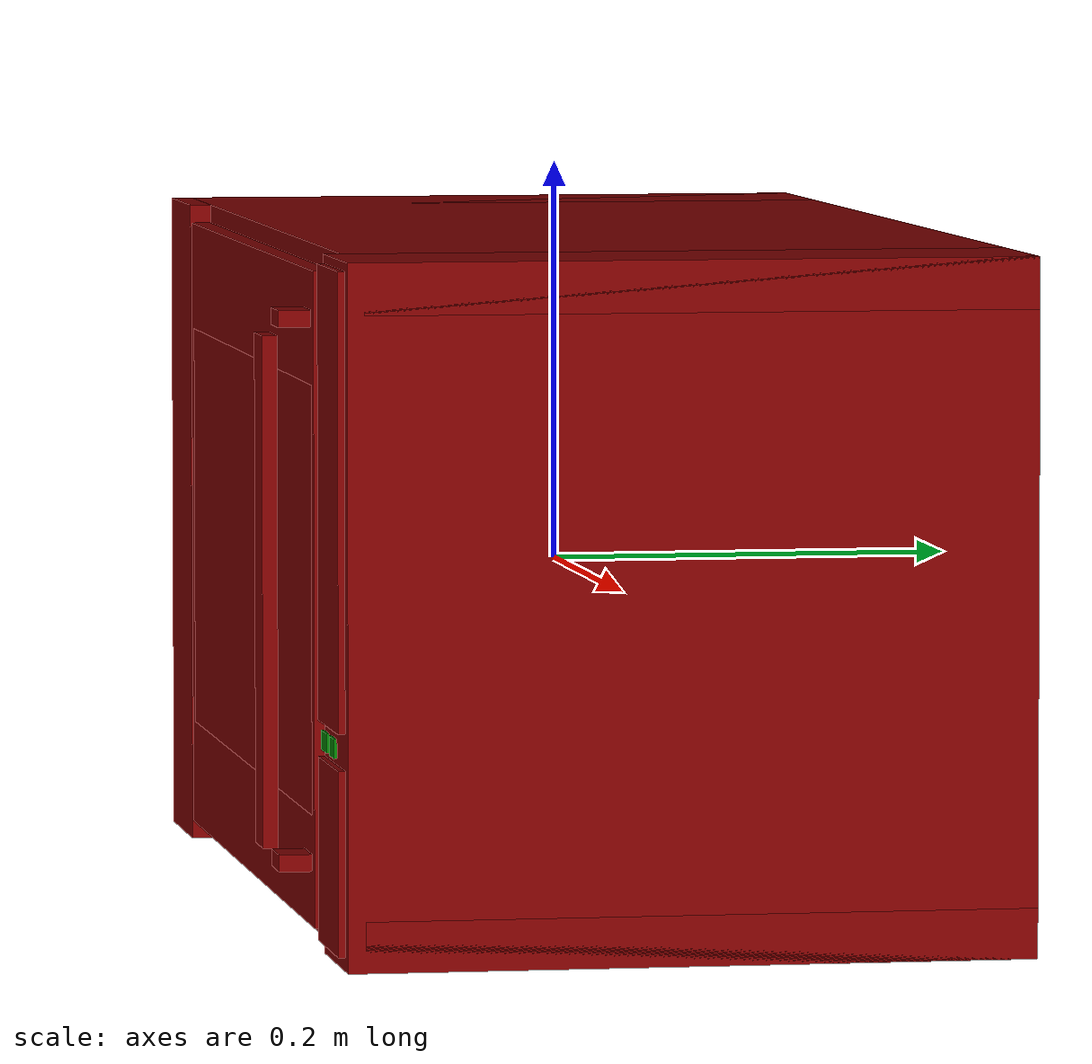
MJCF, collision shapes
<?xml version='1.0' encoding='UTF-8'?>
<mujoco model="model">
  <option timestep="0.002" gravity="0.0 0.0 -9.81"/>
  <compiler angle="radian"/>
  <asset>
    <mesh file="visuals/door.obj" name="door_vis"/>
    <mesh file="visuals/door_Clear.obj" name="door_Clear_vis"/>
    <mesh file="visuals/Body001.obj" name="Body001_vis"/>
    <mesh file="visuals/Disc001.obj" name="Disc001_vis"/>
    <texture file="visuals/T_BC001.png" name="Body001_material" type="2d"/>
    <material name="Body001_material" rgba="1 1 1 1.0" texture="Body001_material" shininess="1" specular="1"/>
    <texture file="visuals/T_BC001.png" name="door_material" type="2d"/>
    <material name="door_material" rgba="1 1 1 1.0" texture="door_material" shininess="1" specular="1"/>
    <material name="door_Clear_material" rgba="0.013285331428050995 0.013285331428050995 0.013285331428050995 0.800000011920929" shininess="0.5" specular="0.3103448502657381"/>
    <texture file="visuals/T_BC001.png" name="Disc001_material" type="2d"/>
    <material name="Disc001_material" rgba="1 1 1 1.0" texture="Disc001_material" shininess="0.5" specular="0.5"/>
  </asset>
  <default>
    <default class="visual">
      <geom conaffinity="0" contype="0" group="1" type="mesh"/>
    </default>
    <default class="collision">
      <geom group="0" rgba="0.5 0 0 0.5"/>
    </default>
    <default class="spawn">
      <geom group="0" rgba="1 1 1 0.5" contype="0" conaffinity="0"/>
      <site group="0" rgba="1 1 1 0.5"/>
    </default>
    <default class="region">
      <geom group="1" conaffinity="0" contype="0" rgba="0 1 0 0"/>
    </default>
  </default>
  <worldbody>
    <body>
      <body name="object">
        <geom class="collision" type="cylinder" pos="-0.00043801116407848895 0.009111126884818077 -0.12990787625312805" size="0.1143873780965805 0.0030228393152356148" quat="1.0 0.0 0.0 0.0" name="tray" rgba="0 1 0 0.5"/>
        <geom class="collision" type="box" pos="0.2859203517436981 -0.15416117012500763 -0.06360133737325668" size="0.008171001449227333 0.0006866594776511192 0.004732870496809483" quat="7.549790126404332e-08 0.0 0.0 1.0" name="start_button" rgba="0.0 0.5 0 0.5"/>
        <geom class="collision" type="box" pos="0.26053735613822937 -0.15416115522384644 -0.06360133737325668" size="0.008208844810724258 0.0006866594776511192 0.004732870496809483" quat="7.549790126404332e-08 0.0 0.0 1.0" name="stop_button" rgba="0.0 0.5 0 0.5"/>
        <geom mesh="Body001_vis" type="mesh" solimp="0.998 0.998 0.001" solref="0.001 1" friction="0.95 0.3 0.1" class="visual" material="Body001_material"/>
        <geom class="collision" type="box" pos="3.253939695468944e-08 0.018499720841646194 0.15523725748062134" size="0.31808313727378845 0.16186517477035522 0.012483902275562286" quat="1.0 0.0 0.0 0.0"/>
        <geom class="collision" type="box" pos="3.253939695468944e-08 0.018499623984098434 -0.15546952188014984" size="0.31808313727378845 0.16186530888080597 0.012251685373485088" quat="1.0 0.0 0.0 0.0"/>
        <geom class="collision" type="box" pos="-0.2788164019584656 0.013070734217762947 -3.253939695468944e-08" size="0.03926675394177437 0.1672941893339157 0.16772116720676422" quat="1.0 0.0 0.0 0.0"/>
        <geom class="collision" type="box" pos="0.2789028286933899 0.01434268243610859 -3.253939695468944e-08" size="0.039180297404527664 0.16602225601673126 0.16772116720676422" quat="1.0 0.0 0.0 0.0"/>
        <geom class="collision" type="box" pos="0.0003017265989910811 0.162059023976326 0.0010020019253715873" size="0.23873817920684814 0.018305867910385132 0.1639925241470337" quat="1.0 0.0 0.0 0.0"/>
        <geom class="collision" type="box" pos="0.2749432623386383 -0.14892856776714325 0.05402635782957077" size="0.033825330436229706 0.006060019135475159 0.10926877707242966" quat="1.0 0.0 0.0 0.0"/>
        <geom class="collision" type="box" pos="0.2749432623386383 -0.14892856776714325 -0.1168941855430603" size="0.033825330436229706 0.006060019135475159 0.04430419206619263" quat="1.0 0.0 0.0 0.0"/>
        <body name="door">
          <joint axis="0.0 0.0 1.0" pos="-0.23723044991493225 -0.15519970655441284 0.00048129024798981845" limited="true" name="microjoint" range="-1.5707963267948966 0.0" type="hinge" damping="1" frictionloss="1" armature=".01" stiffness="0.05"/>
          <geom mesh="door_vis" type="mesh" solimp="0.998 0.998 0.001" solref="0.001 1" friction="0.95 0.3 0.1" class="visual" material="door_material"/>
          <geom class="collision" type="box" pos="0.0011700426694005728 -0.1502472460269928 0.0010020118206739426" size="0.2286289930343628 0.004954578820616007 0.15800361335277557" quat="1.0 0.0 0.0 0.0"/>
          <geom class="collision" type="box" pos="0.21823181211948395 -0.16456030309200287 0.13639391958713531" size="0.01294736098498106 0.007895815186202526 0.004122595302760601" quat="1.0 0.0 0.0 0.0"/>
          <geom class="collision" type="box" pos="0.21823181211948395 -0.16456030309200287 -0.1250927597284317" size="0.012947376817464828 0.007895831018686295 0.004122603219002485" quat="1.0 0.0 0.0 0.0"/>
          <geom class="collision" type="box" pos="0.2184962034225464 -0.17673154175281525 0.0054675801657140255" size="0.013367043808102608 0.0036603729240596294 0.12303414940834045" quat="1.0 0.0 0.0 0.0" name="door_handle_main"/>
          <geom class="collision" type="box" pos="0.0011700516333803535 -0.15024720132350922 0.0003162422508466989" size="0.22008176147937775 0.00495464401319623 0.1036490947008133" quat="1.0 0.0 0.0 0.0"/>
          <geom class="collision" type="box" pos="0.0011700554750859737 -0.15246789157390594 0.00031623951508663595" size="0.22524408996105194 0.0022762250155210495 0.15532046556472778" quat="1.0 0.0 0.0 0.0" name="door_main"/>
          <body name="door_Clear">
            <geom mesh="door_Clear_vis" type="mesh" solimp="0.998 0.998 0.001" solref="0.001 1" friction="0.95 0.3 0.1" class="visual" material="door_Clear_material"/>
            <geom class="collision" type="box" pos="0.0011700516333803535 -0.15024720132350922 0.0003162422508466989" size="0.22008176147937775 0.00495464401319623 0.1036490947008133" quat="1.0 0.0 0.0 0.0"/>
          </body>
        </body>
        <body name="Disc001">
          <joint axis="0.0 0.0 1.0" pos="0.0 0.009555255062878132 -0.13731707632541656" limited="false" name="Disc001_joint" range="0 360" type="hinge" damping="1" frictionloss="1" armature=".01" stiffness="0.05"/>
          <geom mesh="Disc001_vis" type="mesh" solimp="0.998 0.998 0.001" solref="0.001 1" friction="0.95 0.3 0.1" class="visual" material="Disc001_material"/>
          <geom class="collision" type="cylinder" pos="-0.0004380145692266524 0.009111134335398674 -0.1378362476825714" size="0.11438768357038498 0.0030228509567677975" quat="1.0 0.0 0.0 0.0"/>
        </body>
        <geom class="region" name="reg_int" type="box" pos="0.00023759901523590088 0.0006918385624885559 0.004116557538509369" size="0.23496271467208862 0.1382411623597145 0.1320015246272087"/>
        <geom class="region" name="reg_main" type="box" pos="7.450580596923828e-09 0.01258152723312378 0.0" size="0.31908313727378845 0.16878337955474854 0.168721226811409"/>
      <geom class="region" name="reg_tray" type="cylinder" pos="-0.00043801116407848895 0.009111126884818077 0.004616522613912821" size="0.1143873780965805 0.13050155955180526"/></body>
    </body>
  </worldbody>
  <actuator>
    <motor name="microjoint_actuator" joint="microjoint" gear="10"/>
    <motor name="Disc001_joint_actuator" joint="Disc001_joint" gear="10"/>
  </actuator>
</mujoco>
